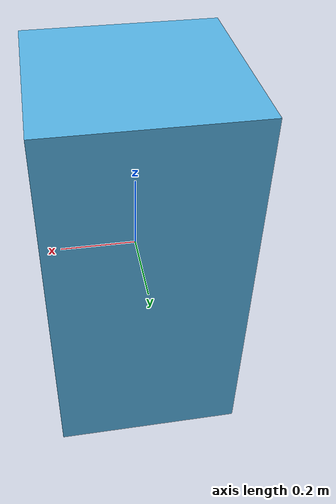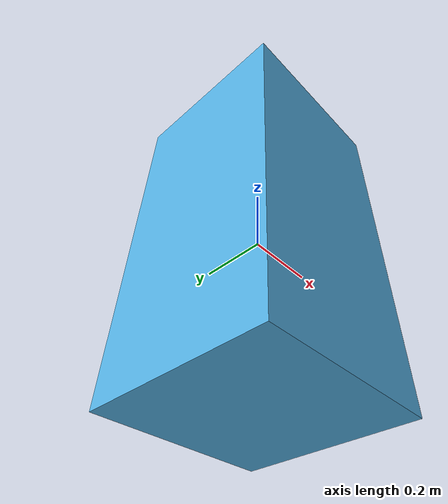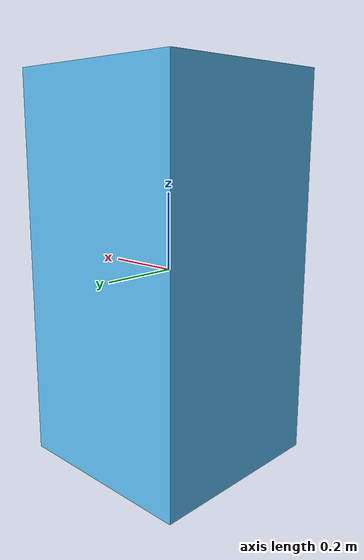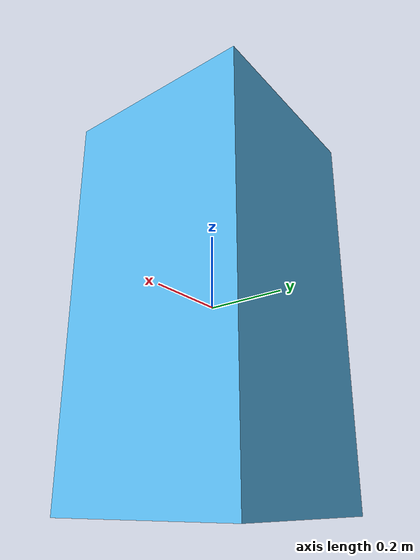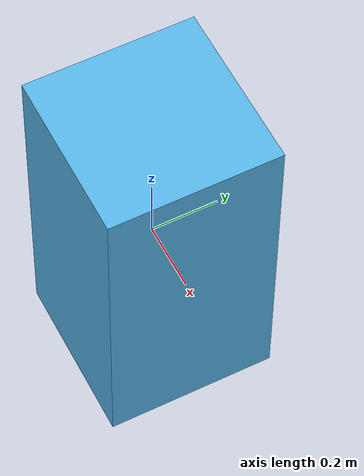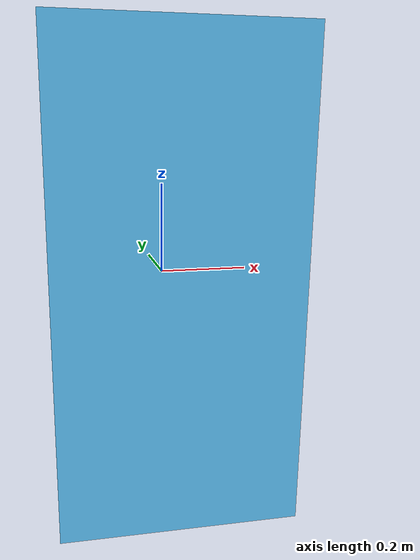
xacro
<?xml version='1.0'?>
<robot name="test_model">

  <!-- root link, on the ground just below the model origin -->
  <link name="base_footprint">
   <visual>
      <origin xyz="0 0 0" rpy="0 0 0" />
      <geometry>
        <box size="0.001 0.001 0.001" />
      </geometry>
    </visual>
  </link>
  <joint name="base_link_joint" type="fixed">
    <origin xyz="0.0 0 0.002" rpy="0 0 0" />
    <parent link="base_footprint"/>
    <child link="base_link" />
  </joint>

  <!-- the model -->
  <link name="base_link">
    <inertial>
      <mass value="50" />
      <origin xyz="0 0 -0.26" />
      <inertia ixx="50.0" ixy="0.0" ixz="0.0"
        iyy="50.0" iyz="0.0"
        izz="50.0" />
    </inertial>
    <visual>
      <geometry>
        <box size="0.5 0.5 1.0" />
      </geometry>
    </visual>
    <collision>
      <origin xyz="0 0 -0.26" />
      <geometry>
        <cylinder length="0.5" radius="0.25" />
      </geometry>
    </collision>
  </link>

  <gazebo>
    <plugin name="object_controller" filename="libgazebo_ros_planar_move.so">
      <commandTopic>cmd_vel</commandTopic>
      <odometryTopic>odom</odometryTopic>
      <odometryFrame>odom</odometryFrame>
      <odometryRate>20.0</odometryRate>
      <robotBaseFrame>base_footprint</robotBaseFrame>
    </plugin>
  </gazebo>

</robot>
